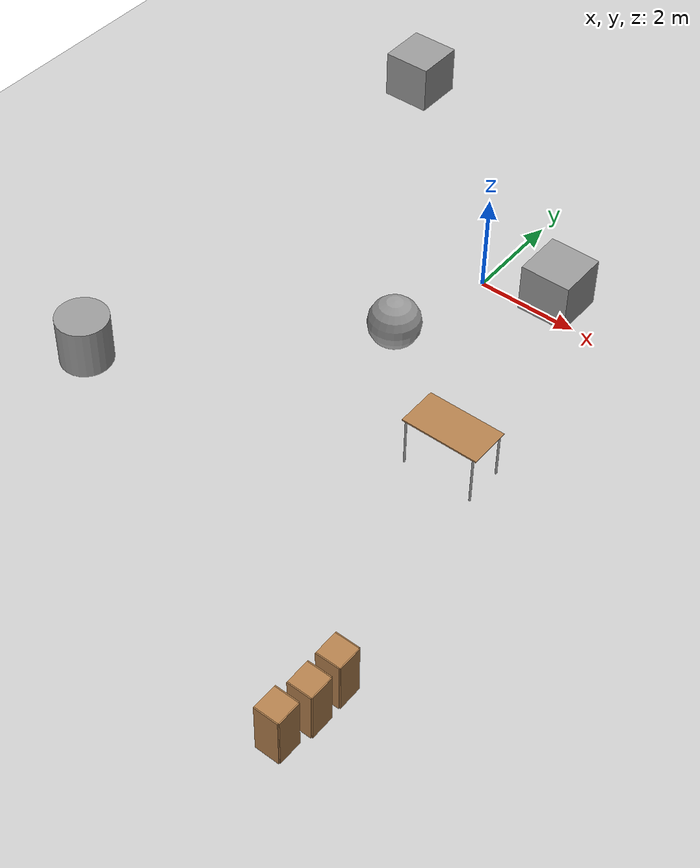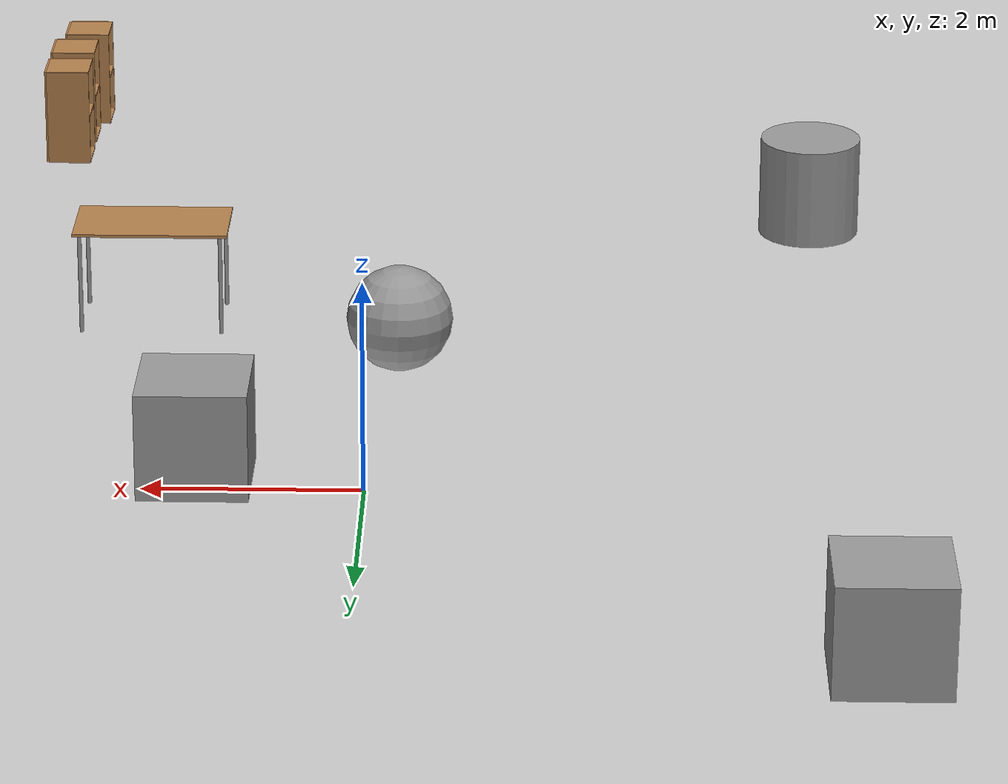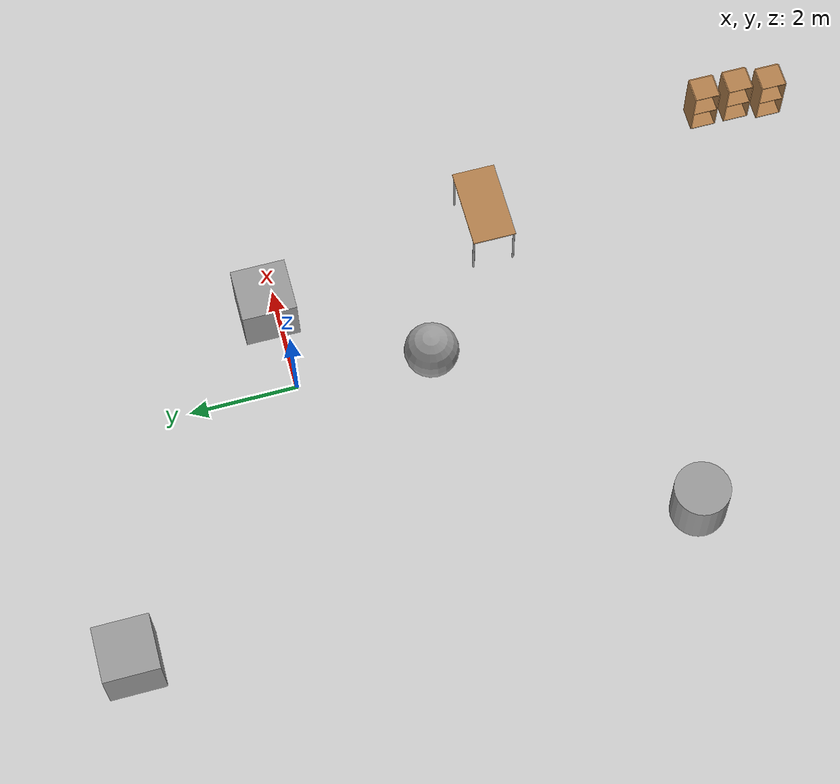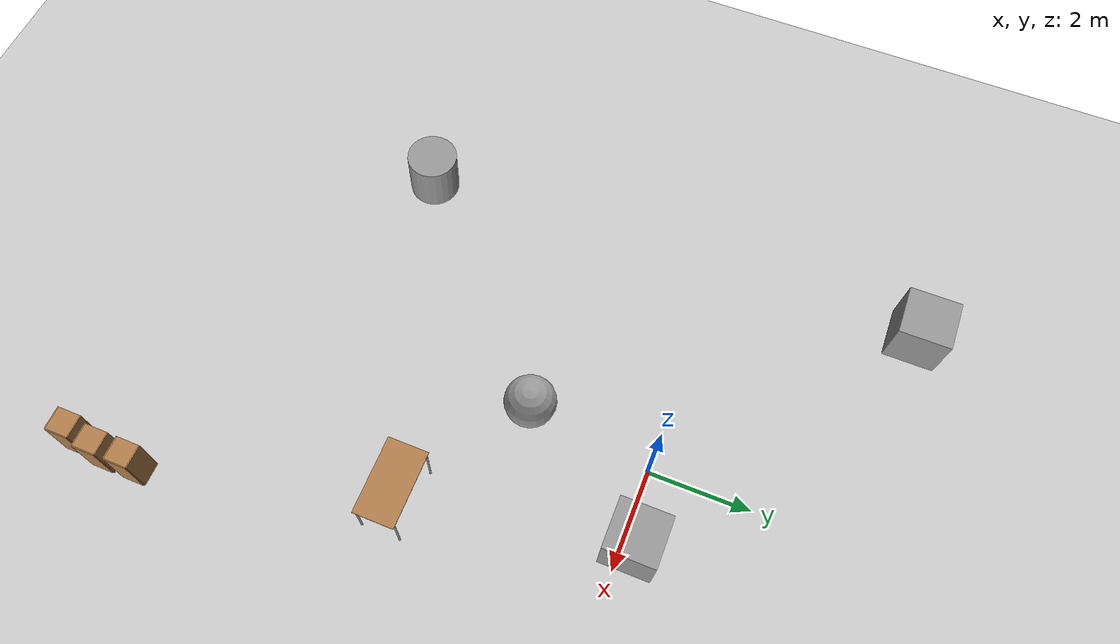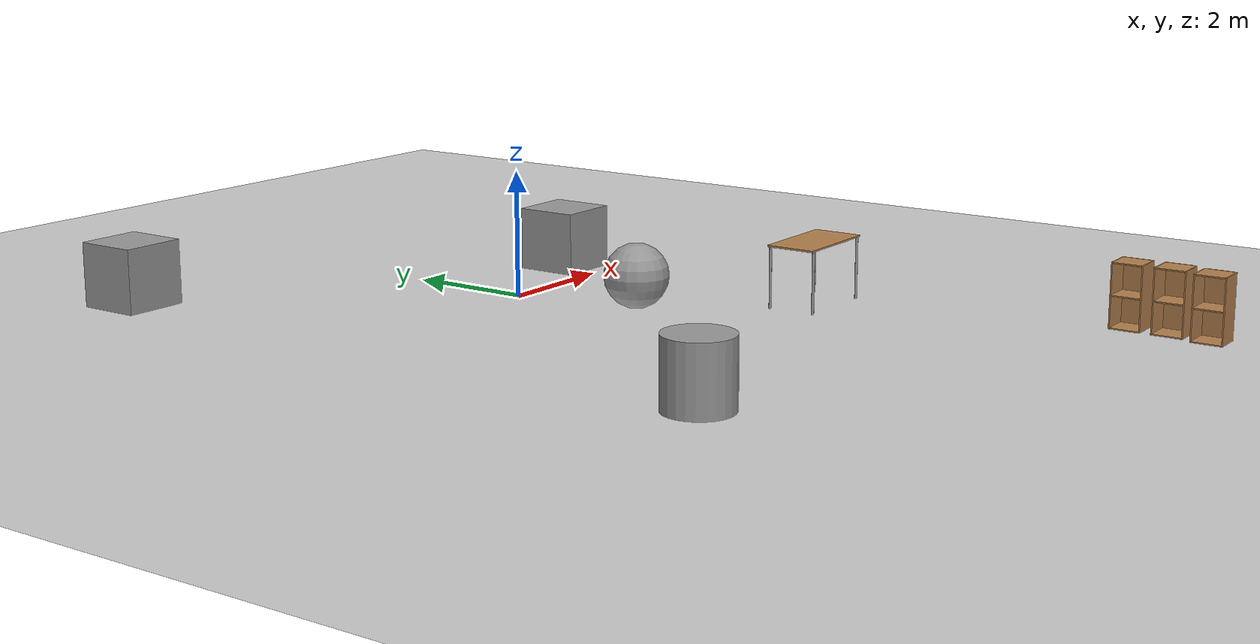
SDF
<sdf version="1.6">
 <world name="default">
  <light name="sun" type="directional">
   <pose>0 0 10 0 -0 0</pose>
   <diffuse>0.8 0.8 0.8 1</diffuse>
   <specular>0.2 0.2 0.2 1</specular>
   <attenuation>
    <range>1000</range>
    <constant>0.9</constant>
    <linear>0.01</linear>
    <quadratic>0.001</quadratic>
   </attenuation>
   <direction>-0.5 0.1 -0.9</direction>
  </light>
  <model name="ground_plane">
   <static>1</static>
   <link name="link">
    <collision name="collision">
     <geometry><plane><normal>0 0 1</normal><size>100 100</size></plane></geometry>
     <surface><friction><ode><mu>100</mu><mu2>50</mu2></ode></friction></surface>
    </collision>
    <visual name="visual">
     <cast_shadows>0</cast_shadows>
     <geometry><plane><normal>0 0 1</normal><size>100 100</size></plane></geometry>
     <material>
      <script><uri>file://media/materials/scripts/gazebo.material</uri><name>Gazebo/Grey</name></script>
     </material>
    </visual>
   </link>
  </model>
  <gravity>0 0 -9.8</gravity>
  <magnetic_field>6e-06 2.3e-05 -4.2e-05</magnetic_field>
  <atmosphere type="adiabatic"/>
  <physics name="default_physics" default="0" type="ode">
   <max_step_size>0.001</max_step_size>
   <real_time_factor>1</real_time_factor>
   <real_time_update_rate>1000</real_time_update_rate>
  </physics>
  <scene><ambient>0.4 0.4 0.4 1</ambient><background>0.7 0.7 0.7 1</background><shadows>1</shadows></scene>
  <spherical_coordinates>
   <surface_model>EARTH_WGS84</surface_model>
   <latitude_deg>0</latitude_deg>
   <longitude_deg>0</longitude_deg>
   <elevation>0</elevation>
   <heading_deg>0</heading_deg>
  </spherical_coordinates>
  <model name="table">
   <static>1</static>
   <link name="link">
    <collision name="surface">
     <pose>0 0 1 0 -0 0</pose>
     <geometry><box><size>1.5 0.8 0.03</size></box></geometry>
     <surface><friction><ode><mu>0.6</mu><mu2>0.6</mu2></ode></friction></surface>
    </collision>
    <visual name="visual1">
     <pose>0 0 1 0 -0 0</pose>
     <geometry><box><size>1.5 0.8 0.03</size></box></geometry>
     <material>
      <script><uri>file://media/materials/scripts/gazebo.material</uri><name>Gazebo/Wood</name></script>
     </material>
    </visual>
    <collision name="front_left_leg">
     <pose>0.68 0.38 0.5 0 -0 0</pose>
     <geometry><cylinder><radius>0.02</radius><length>1</length></cylinder></geometry>
    </collision>
    <visual name="front_left_leg">
     <pose>0.68 0.38 0.5 0 -0 0</pose>
     <geometry><cylinder><radius>0.02</radius><length>1</length></cylinder></geometry>
     <material>
      <script><uri>file://media/materials/scripts/gazebo.material</uri><name>Gazebo/Grey</name></script>
     </material>
    </visual>
    <collision name="front_right_leg">
     <pose>0.68 -0.38 0.5 0 -0 0</pose>
     <geometry><cylinder><radius>0.02</radius><length>1</length></cylinder></geometry>
    </collision>
    <visual name="front_right_leg">
     <pose>0.68 -0.38 0.5 0 -0 0</pose>
     <geometry><cylinder><radius>0.02</radius><length>1</length></cylinder></geometry>
     <material>
      <script><uri>file://media/materials/scripts/gazebo.material</uri><name>Gazebo/Grey</name></script>
     </material>
    </visual>
    <collision name="back_right_leg">
     <pose>-0.68 -0.38 0.5 0 -0 0</pose>
     <geometry><cylinder><radius>0.02</radius><length>1</length></cylinder></geometry>
    </collision>
    <visual name="back_right_leg">
     <pose>-0.68 -0.38 0.5 0 -0 0</pose>
     <geometry><cylinder><radius>0.02</radius><length>1</length></cylinder></geometry>
     <material>
      <script><uri>file://media/materials/scripts/gazebo.material</uri><name>Gazebo/Grey</name></script>
     </material>
    </visual>
    <collision name="back_left_leg">
     <pose>-0.68 0.38 0.5 0 -0 0</pose>
     <geometry><cylinder><radius>0.02</radius><length>1</length></cylinder></geometry>
    </collision>
    <visual name="back_left_leg">
     <pose>-0.68 0.38 0.5 0 -0 0</pose>
     <geometry><cylinder><radius>0.02</radius><length>1</length></cylinder></geometry>
     <material>
      <script><uri>file://media/materials/scripts/gazebo.material</uri><name>Gazebo/Grey</name></script>
     </material>
    </visual>
   </link>
   <pose>2.22824 -4.12126 0 0 -0 0</pose>
  </model>
  <model name="unit_box">
   <pose>-4.43644 3.93624 0.6898 -0 -0 -0</pose>
   <link name="link">
    <inertial>
     <mass>1</mass>
     <inertia>
      <ixx>0.166667</ixx>
      <ixy>0</ixy>
      <ixz>0</ixz>
      <iyy>0.166667</iyy>
      <iyz>0</iyz>
      <izz>0.166667</izz>
     </inertia>
    </inertial>
    <collision name="collision"><geometry><box><size>1 1 1</size></box></geometry></collision>
    <visual name="visual">
     <geometry><box><size>1 1 1</size></box></geometry>
     <material>
      <script><name>Gazebo/Grey</name><uri>file://media/materials/scripts/gazebo.material</uri></script>
     </material>
    </visual>
   </link>
  </model>
  <model name="unit_box_0">
   <pose>1.48168 0.194056 0.689796 9e-06 0 -0.000178</pose>
   <link name="link">
    <inertial>
     <mass>1</mass>
     <inertia>
      <ixx>0.166667</ixx>
      <ixy>0</ixy>
      <ixz>0</ixz>
      <iyy>0.166667</iyy>
      <iyz>0</iyz>
      <izz>0.166667</izz>
     </inertia>
    </inertial>
    <collision name="collision"><geometry><box><size>1 1 1</size></box></geometry></collision>
    <visual name="visual">
     <geometry><box><size>1 1 1</size></box></geometry>
     <material>
      <script><name>Gazebo/Grey</name><uri>file://media/materials/scripts/gazebo.material</uri></script>
     </material>
    </visual>
   </link>
  </model>
  <model name="unit_sphere">
   <pose>-0.236474 -2.46175 0.6898 0 -0 0</pose>
   <link name="link">
    <inertial>
     <mass>1</mass>
     <inertia><ixx>0.1</ixx><ixy>0</ixy><ixz>0</ixz><iyy>0.1</iyy><iyz>0</iyz><izz>0.1</izz></inertia>
    </inertial>
    <collision name="collision"><geometry><sphere><radius>0.5</radius></sphere></geometry></collision>
    <visual name="visual">
     <geometry><sphere><radius>0.5</radius></sphere></geometry>
     <material>
      <script><name>Gazebo/Grey</name><uri>file://media/materials/scripts/gazebo.material</uri></script>
     </material>
    </visual>
   </link>
  </model>
  <model name="unit_cylinder">
   <pose>-4.25434 -6.2176 0.68979 0 -0 -0.006034</pose>
   <link name="link">
    <inertial>
     <mass>1</mass>
     <inertia><ixx>0.145833</ixx><ixy>0</ixy><ixz>0</ixz><iyy>0.145833</iyy><iyz>0</iyz><izz>0.125</izz></inertia>
    </inertial>
    <collision name="collision">
     <geometry><cylinder><radius>0.5</radius><length>1</length></cylinder></geometry>
    </collision>
    <visual name="visual">
     <geometry><cylinder><radius>0.5</radius><length>1</length></cylinder></geometry>
     <material>
      <script><name>Gazebo/Grey</name><uri>file://media/materials/scripts/gazebo.material</uri></script>
     </material>
    </visual>
   </link>
  </model>
  <model name="cabinet">
   <static>1</static>
   <link name="cabinet_bottom_plate">
    <inertial>
     <pose>0 0 -1 0 -0 0</pose>
     <inertia><ixx>2.05</ixx><ixy>0</ixy><ixz>0</ixz><iyy>2.05</iyy><iyz>0</iyz><izz>2.05</izz></inertia>
     <mass>25</mass>
    </inertial>
    <collision name="cabinet_bottom_plate_geom">
     <pose>0 0 0.01 0 -0 0</pose>
     <geometry><box><size>0.45 0.45 0.02</size></box></geometry>
    </collision>
    <visual name="cabinet_bottom_plate_geom_visual">
     <pose>0 0 0.01 0 -0 0</pose>
     <geometry><box><size>0.45 0.45 0.02</size></box></geometry>
     <material>
      <script><uri>file://media/materials/scripts/gazebo.material</uri><name>Gazebo/Wood</name></script>
     </material>
    </visual>
    <collision name="cabinet_bottom_plate_geom_cabinet_back_plate">
     <pose>0.235 0 0.51 0 -0 0</pose>
     <geometry><box><size>0.02 0.45 1.02</size></box></geometry>
    </collision>
    <visual name="cabinet_bottom_plate_geom_cabinet_back_plate_visual">
     <pose>0.235 0 0.51 0 -0 0</pose>
     <geometry><box><size>0.02 0.45 1.02</size></box></geometry>
     <material>
      <script><uri>file://media/materials/scripts/gazebo.material</uri><name>Gazebo/Wood</name></script>
     </material>
    </visual>
    <collision name="cabinet_bottom_plate_geom_cabinet_left_plate">
     <pose>0 0.235 0.51 0 -0 0</pose>
     <geometry><box><size>0.45 0.02 1.02</size></box></geometry>
    </collision>
    <visual name="cabinet_bottom_plate_geom_cabinet_left_plate_visual">
     <pose>0 0.235 0.51 0 -0 0</pose>
     <geometry><box><size>0.45 0.02 1.02</size></box></geometry>
     <material>
      <script><uri>file://media/materials/scripts/gazebo.material</uri><name>Gazebo/Wood</name></script>
     </material>
    </visual>
    <collision name="cabinet_bottom_plate_geom_cabinet_middle_plate">
     <pose>0 0 0.51 0 -0 0</pose>
     <geometry><box><size>0.45 0.45 0.02</size></box></geometry>
    </collision>
    <visual name="cabinet_bottom_plate_geom_cabinet_middle_plate_visual">
     <pose>0 0 0.51 0 -0 0</pose>
     <geometry><box><size>0.45 0.45 0.02</size></box></geometry>
     <material>
      <script><uri>file://media/materials/scripts/gazebo.material</uri><name>Gazebo/Wood</name></script>
     </material>
    </visual>
    <collision name="cabinet_bottom_plate_geom_cabinet_right_plate">
     <pose>0 -0.235 0.51 0 -0 0</pose>
     <geometry><box><size>0.45 0.02 1.02</size></box></geometry>
    </collision>
    <visual name="cabinet_bottom_plate_geom_cabinet_right_plate_visual">
     <pose>0 -0.235 0.51 0 -0 0</pose>
     <geometry><box><size>0.45 0.02 1.02</size></box></geometry>
     <material>
      <script><uri>file://media/materials/scripts/gazebo.material</uri><name>Gazebo/Wood</name></script>
     </material>
    </visual>
    <collision name="cabinet_bottom_plate_geom_cabinet_top_plate">
     <pose>0 0 1.01 0 -0 0</pose>
     <geometry><box><size>0.45 0.45 0.02</size></box></geometry>
    </collision>
    <visual name="cabinet_bottom_plate_geom_cabinet_top_plate_visual">
     <pose>0 0 1.01 0 -0 0</pose>
     <geometry><box><size>0.45 0.45 0.02</size></box></geometry>
     <material>
      <script><uri>file://media/materials/scripts/gazebo.material</uri><name>Gazebo/Wood</name></script>
     </material>
    </visual>
   </link>
   <pose>3.44026 -10.0736 0 0 -0 0</pose>
  </model>
  <model name="cabinet_0">
   <static>1</static>
   <link name="cabinet_bottom_plate">
    <inertial>
     <pose>0 0 -1 0 -0 0</pose>
     <inertia><ixx>2.05</ixx><ixy>0</ixy><ixz>0</ixz><iyy>2.05</iyy><iyz>0</iyz><izz>2.05</izz></inertia>
     <mass>25</mass>
    </inertial>
    <collision name="cabinet_bottom_plate_geom">
     <pose>0 0 0.01 0 -0 0</pose>
     <geometry><box><size>0.45 0.45 0.02</size></box></geometry>
    </collision>
    <visual name="cabinet_bottom_plate_geom_visual">
     <pose>0 0 0.01 0 -0 0</pose>
     <geometry><box><size>0.45 0.45 0.02</size></box></geometry>
     <material>
      <script><uri>file://media/materials/scripts/gazebo.material</uri><name>Gazebo/Wood</name></script>
     </material>
    </visual>
    <collision name="cabinet_bottom_plate_geom_cabinet_back_plate">
     <pose>0.235 0 0.51 0 -0 0</pose>
     <geometry><box><size>0.02 0.45 1.02</size></box></geometry>
    </collision>
    <visual name="cabinet_bottom_plate_geom_cabinet_back_plate_visual">
     <pose>0.235 0 0.51 0 -0 0</pose>
     <geometry><box><size>0.02 0.45 1.02</size></box></geometry>
     <material>
      <script><uri>file://media/materials/scripts/gazebo.material</uri><name>Gazebo/Wood</name></script>
     </material>
    </visual>
    <collision name="cabinet_bottom_plate_geom_cabinet_left_plate">
     <pose>0 0.235 0.51 0 -0 0</pose>
     <geometry><box><size>0.45 0.02 1.02</size></box></geometry>
    </collision>
    <visual name="cabinet_bottom_plate_geom_cabinet_left_plate_visual">
     <pose>0 0.235 0.51 0 -0 0</pose>
     <geometry><box><size>0.45 0.02 1.02</size></box></geometry>
     <material>
      <script><uri>file://media/materials/scripts/gazebo.material</uri><name>Gazebo/Wood</name></script>
     </material>
    </visual>
    <collision name="cabinet_bottom_plate_geom_cabinet_middle_plate">
     <pose>0 0 0.51 0 -0 0</pose>
     <geometry><box><size>0.45 0.45 0.02</size></box></geometry>
    </collision>
    <visual name="cabinet_bottom_plate_geom_cabinet_middle_plate_visual">
     <pose>0 0 0.51 0 -0 0</pose>
     <geometry><box><size>0.45 0.45 0.02</size></box></geometry>
     <material>
      <script><uri>file://media/materials/scripts/gazebo.material</uri><name>Gazebo/Wood</name></script>
     </material>
    </visual>
    <collision name="cabinet_bottom_plate_geom_cabinet_right_plate">
     <pose>0 -0.235 0.51 0 -0 0</pose>
     <geometry><box><size>0.45 0.02 1.02</size></box></geometry>
    </collision>
    <visual name="cabinet_bottom_plate_geom_cabinet_right_plate_visual">
     <pose>0 -0.235 0.51 0 -0 0</pose>
     <geometry><box><size>0.45 0.02 1.02</size></box></geometry>
     <material>
      <script><uri>file://media/materials/scripts/gazebo.material</uri><name>Gazebo/Wood</name></script>
     </material>
    </visual>
    <collision name="cabinet_bottom_plate_geom_cabinet_top_plate">
     <pose>0 0 1.01 0 -0 0</pose>
     <geometry><box><size>0.45 0.45 0.02</size></box></geometry>
    </collision>
    <visual name="cabinet_bottom_plate_geom_cabinet_top_plate_visual">
     <pose>0 0 1.01 0 -0 0</pose>
     <geometry><box><size>0.45 0.45 0.02</size></box></geometry>
     <material>
      <script><uri>file://media/materials/scripts/gazebo.material</uri><name>Gazebo/Wood</name></script>
     </material>
    </visual>
   </link>
   <pose>3.53414 -9.44727 0 0 -0 0</pose>
  </model>
  <model name="cabinet_1">
   <static>1</static>
   <link name="cabinet_bottom_plate">
    <inertial>
     <pose>0 0 -1 0 -0 0</pose>
     <inertia><ixx>2.05</ixx><ixy>0</ixy><ixz>0</ixz><iyy>2.05</iyy><iyz>0</iyz><izz>2.05</izz></inertia>
     <mass>25</mass>
    </inertial>
    <collision name="cabinet_bottom_plate_geom">
     <pose>0 0 0.01 0 -0 0</pose>
     <geometry><box><size>0.45 0.45 0.02</size></box></geometry>
    </collision>
    <visual name="cabinet_bottom_plate_geom_visual">
     <pose>0 0 0.01 0 -0 0</pose>
     <geometry><box><size>0.45 0.45 0.02</size></box></geometry>
     <material>
      <script><uri>file://media/materials/scripts/gazebo.material</uri><name>Gazebo/Wood</name></script>
     </material>
    </visual>
    <collision name="cabinet_bottom_plate_geom_cabinet_back_plate">
     <pose>0.235 0 0.51 0 -0 0</pose>
     <geometry><box><size>0.02 0.45 1.02</size></box></geometry>
    </collision>
    <visual name="cabinet_bottom_plate_geom_cabinet_back_plate_visual">
     <pose>0.235 0 0.51 0 -0 0</pose>
     <geometry><box><size>0.02 0.45 1.02</size></box></geometry>
     <material>
      <script><uri>file://media/materials/scripts/gazebo.material</uri><name>Gazebo/Wood</name></script>
     </material>
    </visual>
    <collision name="cabinet_bottom_plate_geom_cabinet_left_plate">
     <pose>0 0.235 0.51 0 -0 0</pose>
     <geometry><box><size>0.45 0.02 1.02</size></box></geometry>
    </collision>
    <visual name="cabinet_bottom_plate_geom_cabinet_left_plate_visual">
     <pose>0 0.235 0.51 0 -0 0</pose>
     <geometry><box><size>0.45 0.02 1.02</size></box></geometry>
     <material>
      <script><uri>file://media/materials/scripts/gazebo.material</uri><name>Gazebo/Wood</name></script>
     </material>
    </visual>
    <collision name="cabinet_bottom_plate_geom_cabinet_middle_plate">
     <pose>0 0 0.51 0 -0 0</pose>
     <geometry><box><size>0.45 0.45 0.02</size></box></geometry>
    </collision>
    <visual name="cabinet_bottom_plate_geom_cabinet_middle_plate_visual">
     <pose>0 0 0.51 0 -0 0</pose>
     <geometry><box><size>0.45 0.45 0.02</size></box></geometry>
     <material>
      <script><uri>file://media/materials/scripts/gazebo.material</uri><name>Gazebo/Wood</name></script>
     </material>
    </visual>
    <collision name="cabinet_bottom_plate_geom_cabinet_right_plate">
     <pose>0 -0.235 0.51 0 -0 0</pose>
     <geometry><box><size>0.45 0.02 1.02</size></box></geometry>
    </collision>
    <visual name="cabinet_bottom_plate_geom_cabinet_right_plate_visual">
     <pose>0 -0.235 0.51 0 -0 0</pose>
     <geometry><box><size>0.45 0.02 1.02</size></box></geometry>
     <material>
      <script><uri>file://media/materials/scripts/gazebo.material</uri><name>Gazebo/Wood</name></script>
     </material>
    </visual>
    <collision name="cabinet_bottom_plate_geom_cabinet_top_plate">
     <pose>0 0 1.01 0 -0 0</pose>
     <geometry><box><size>0.45 0.45 0.02</size></box></geometry>
    </collision>
    <visual name="cabinet_bottom_plate_geom_cabinet_top_plate_visual">
     <pose>0 0 1.01 0 -0 0</pose>
     <geometry><box><size>0.45 0.45 0.02</size></box></geometry>
     <material>
      <script><uri>file://media/materials/scripts/gazebo.material</uri><name>Gazebo/Wood</name></script>
     </material>
    </visual>
   </link>
   <pose>3.53293 -8.79459 0 0 -0 0</pose>
  </model>
 </world>
</sdf>
